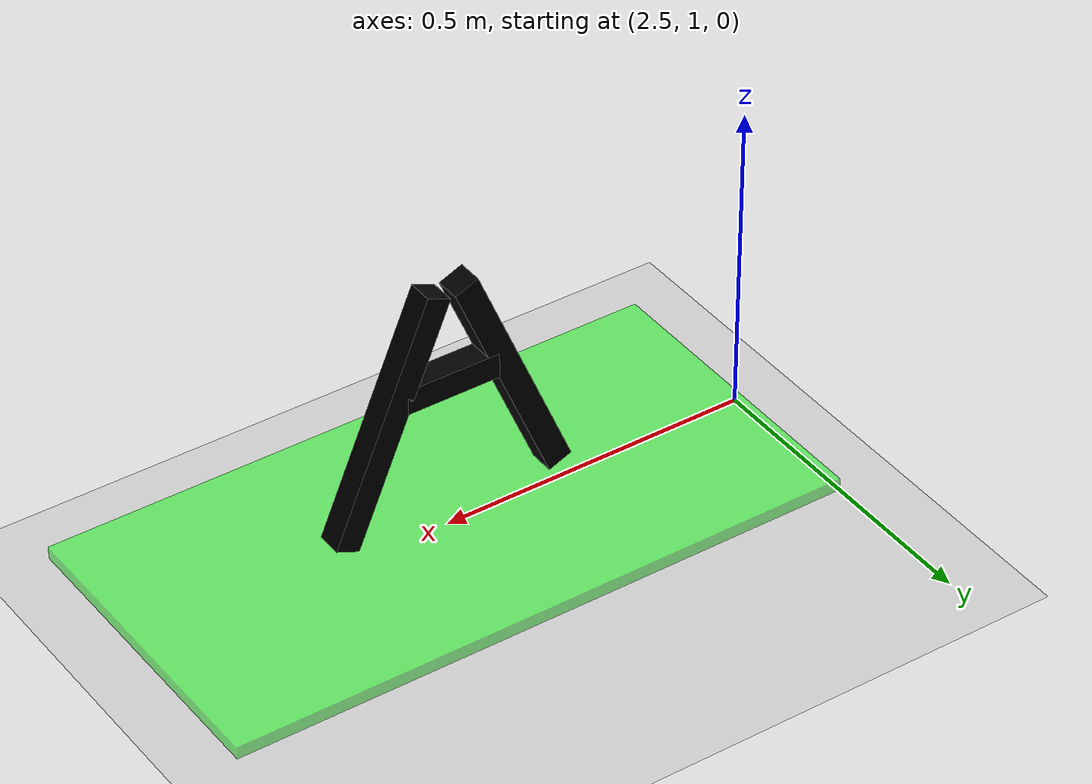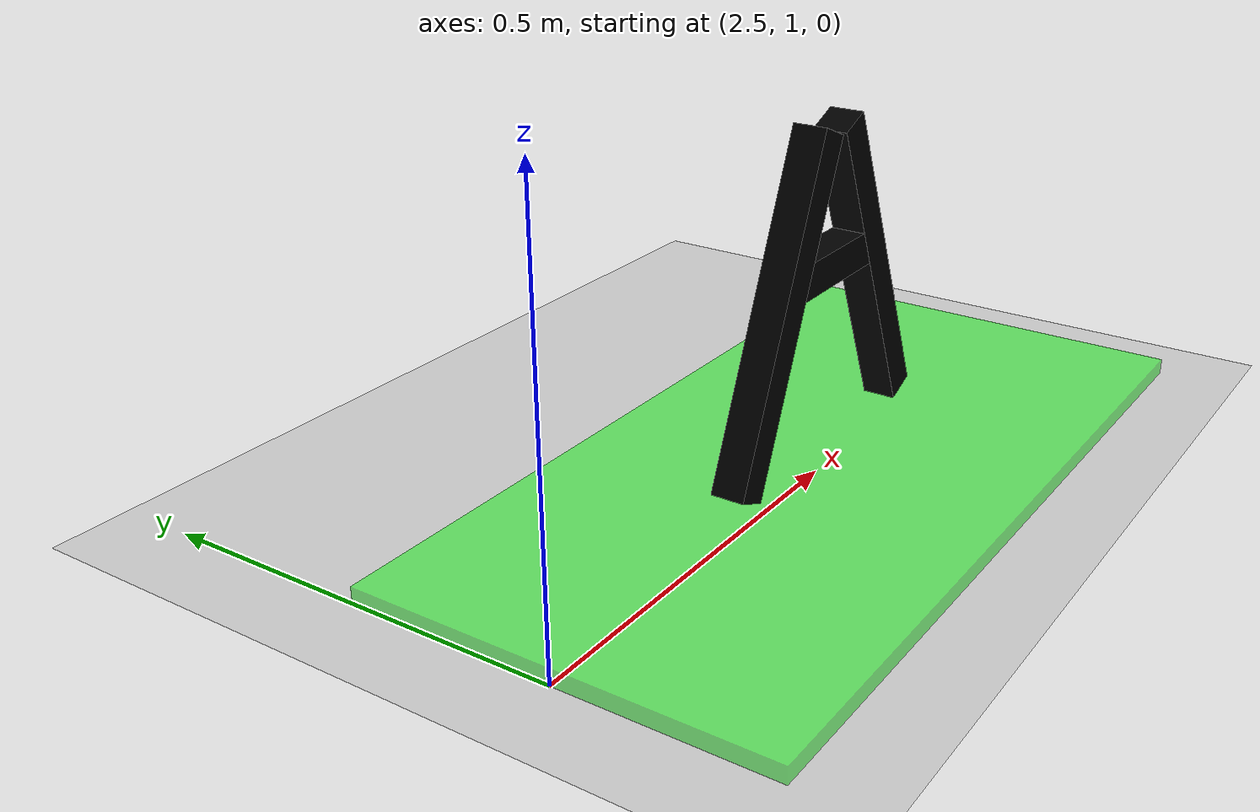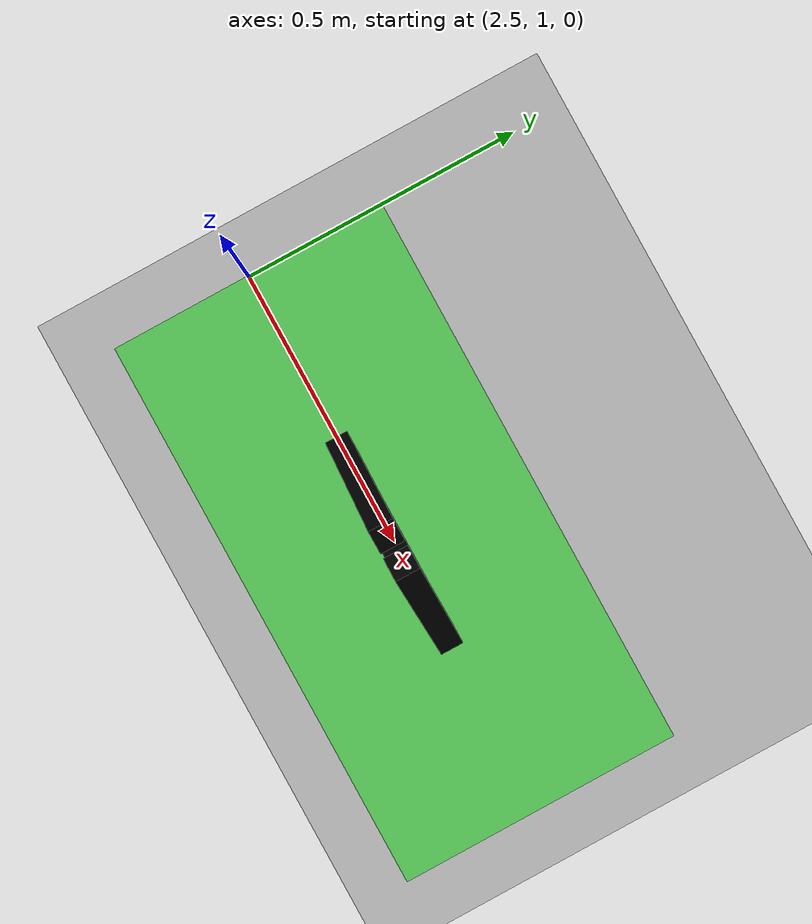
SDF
<sdf version="1.4">
 <world name="default">
  <model name="ground_plane">
   <static>1</static>
   <link name="link">
    <collision name="collision">
     <geometry><plane><normal>0 0 1</normal><size>100 100</size></plane></geometry>
     <surface><friction><ode><mu>100</mu><mu2>50</mu2></ode></friction></surface>
    </collision>
    <visual name="visual">
     <cast_shadows>0</cast_shadows>
     <geometry><plane><normal>0 0 1</normal><size>100 100</size></plane></geometry>
     <material>
      <script><uri>file://media/materials/scripts/gazebo.material</uri><name>Gazebo/Grey</name></script>
     </material>
    </visual>
    <velocity_decay><linear>0</linear><angular>0</angular></velocity_decay>
   </link>
  </model>
  <model name="zone_a">
   <static>true</static>
   <pose>3.0 1.0 0.01 0 0 0</pose>
   <link name="base">
    <visual name="visual">
     <geometry><box><size>1.0 0.5 0.02</size></box></geometry>
     <material><ambient>0 1 0 0.5</ambient><diffuse>0 1 0 0.5</diffuse></material>
    </visual>
   </link>
   <link name="letter_A_1">
    <pose>-0.1 0 0.22 0 0.4 0</pose>
    <visual name="v">
     <geometry><box><size>0.04 0.04 0.4</size></box></geometry>
     <material><ambient>0 0 0 1</ambient><diffuse>0 0 0 1</diffuse></material>
    </visual>
   </link>
   <link name="letter_A_2">
    <pose>0.1 0 0.22 0 -0.4 0</pose>
    <visual name="v">
     <geometry><box><size>0.04 0.04 0.4</size></box></geometry>
     <material><ambient>0 0 0 1</ambient><diffuse>0 0 0 1</diffuse></material>
    </visual>
   </link>
   <link name="letter_A_3">
    <pose>0 0 0.25 0 0 0</pose>
    <visual name="v">
     <geometry><box><size>0.15 0.04 0.04</size></box></geometry>
     <material><ambient>0 0 0 1</ambient><diffuse>0 0 0 1</diffuse></material>
    </visual>
   </link>
  </model>
 </world>
</sdf>
